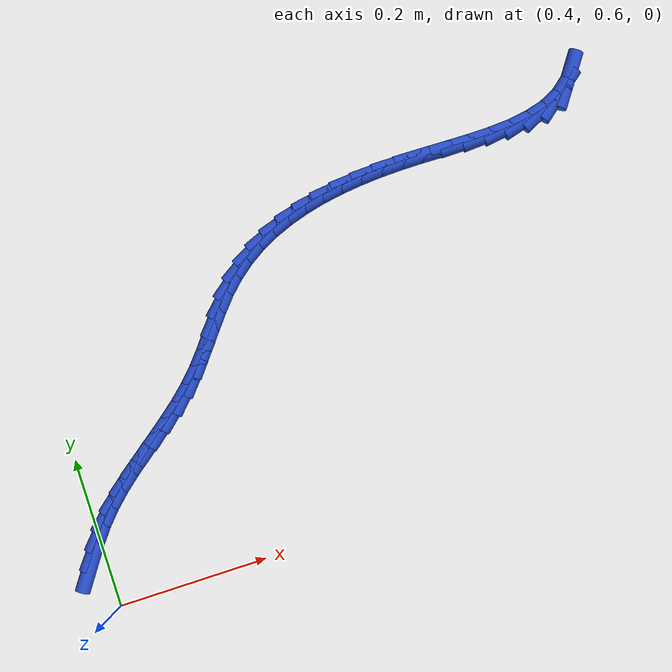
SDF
<sdf version="1.6">
 <world name="default">
  <model name="ground_plane">
   <static>1</static>
   <link name="link">
    <collision name="collision">
     <geometry><plane><normal>0 0 1</normal><size>100 100</size></plane></geometry>
     <surface><friction><ode><mu>100</mu><mu2>50</mu2></ode></friction></surface>
    </collision>
    <visual name="visual">
     <cast_shadows>0</cast_shadows>
     <geometry><plane><normal>0 0 1</normal><size>100 100</size></plane></geometry>
     <material>
      <script><uri>file://media/materials/scripts/gazebo.material</uri><name>Gazebo/WhiteGlow</name></script>
     </material>
    </visual>
   </link>
  </model>
  <model name="line">
   <link name="link_30">
    <pose>0.38174015974260983 0.6664988276915829 0.01 0 1.57 0.9751084401328263</pose>
    <collision name="collision">
     <geometry><cylinder><radius>0.01</radius><length>0.08</length></cylinder></geometry>
    </collision>
    <visual name="visual">
     <material>
      <script><name>Gazebo/Blue</name><uri>file://media/materials/scripts/gazebo.material</uri></script>
     </material>
     <geometry><cylinder><radius>0.01</radius><length>0.08</length></cylinder></geometry>
    </visual>
   </link>
   <link name="link_31">
    <pose>0.39638793772403197 0.6881087971220984 0.01 0 1.57 0.9142567050235809</pose>
    <collision name="collision">
     <geometry><cylinder><radius>0.01</radius><length>0.08</length></cylinder></geometry>
    </collision>
    <visual name="visual">
     <material>
      <script><name>Gazebo/Blue</name><uri>file://media/materials/scripts/gazebo.material</uri></script>
     </material>
     <geometry><cylinder><radius>0.01</radius><length>0.08</length></cylinder></geometry>
    </visual>
   </link>
   <link name="link_32">
    <pose>0.412223475573457 0.7086590835398332 0.01 0 1.57 0.8391795045580464</pose>
    <collision name="collision">
     <geometry><cylinder><radius>0.01</radius><length>0.08</length></cylinder></geometry>
    </collision>
    <visual name="visual">
     <material>
      <script><name>Gazebo/Blue</name><uri>file://media/materials/scripts/gazebo.material</uri></script>
     </material>
     <geometry><cylinder><radius>0.01</radius><length>0.08</length></cylinder></geometry>
    </visual>
   </link>
   <link name="link_33">
    <pose>0.42952521194756565 0.7279296246226837 0.01 0 1.57 0.7596950481839011</pose>
    <collision name="collision">
     <geometry><cylinder><radius>0.01</radius><length>0.08</length></cylinder></geometry>
    </collision>
    <visual name="visual">
     <material>
      <script><name>Gazebo/Blue</name><uri>file://media/materials/scripts/gazebo.material</uri></script>
     </material>
     <geometry><cylinder><radius>0.01</radius><length>0.08</length></cylinder></geometry>
    </visual>
   </link>
   <link name="link_34">
    <pose>0.44839693710184775 0.7458553327712897 0.01 0 1.57 0.6999803119897922</pose>
    <collision name="collision">
     <geometry><cylinder><radius>0.01</radius><length>0.08</length></cylinder></geometry>
    </collision>
    <visual name="visual">
     <material>
      <script><name>Gazebo/Blue</name><uri>file://media/materials/scripts/gazebo.material</uri></script>
     </material>
     <geometry><cylinder><radius>0.01</radius><length>0.08</length></cylinder></geometry>
    </visual>
   </link>
   <link name="link_35">
    <pose>0.46848640694426885 0.7627757836760003 0.01 0 1.57 0.6633917569379105</pose>
    <collision name="collision">
     <geometry><cylinder><radius>0.01</radius><length>0.08</length></cylinder></geometry>
    </collision>
    <visual name="visual">
     <material>
      <script><name>Gazebo/Blue</name><uri>file://media/materials/scripts/gazebo.material</uri></script>
     </material>
     <geometry><cylinder><radius>0.01</radius><length>0.08</length></cylinder></geometry>
    </visual>
   </link>
   <link name="link_36">
    <pose>0.4893678729325579 0.7790957773963426 0.01 0 1.57 0.6491562956086534</pose>
    <collision name="collision">
     <geometry><cylinder><radius>0.01</radius><length>0.08</length></cylinder></geometry>
    </collision>
    <visual name="visual">
     <material>
      <script><name>Gazebo/Blue</name><uri>file://media/materials/scripts/gazebo.material</uri></script>
     </material>
     <geometry><cylinder><radius>0.01</radius><length>0.08</length></cylinder></geometry>
    </visual>
   </link>
   <link name="link_37">
    <pose>0.5106155865244453 0.7952201139918446 0.01 0 1.57 0.6567282749231638</pose>
    <collision name="collision">
     <geometry><cylinder><radius>0.01</radius><length>0.08</length></cylinder></geometry>
    </collision>
    <visual name="visual">
     <material>
      <script><name>Gazebo/Blue</name><uri>file://media/materials/scripts/gazebo.material</uri></script>
     </material>
     <geometry><cylinder><radius>0.01</radius><length>0.08</length></cylinder></geometry>
    </visual>
   </link>
   <link name="link_38">
    <pose>0.5318037991776596 0.8115535935220327 0.01 0 1.57 0.6859792857089673</pose>
    <collision name="collision">
     <geometry><cylinder><radius>0.01</radius><length>0.08</length></cylinder></geometry>
    </collision>
    <visual name="visual">
     <material>
      <script><name>Gazebo/Blue</name><uri>file://media/materials/scripts/gazebo.material</uri></script>
     </material>
     <geometry><cylinder><radius>0.01</radius><length>0.08</length></cylinder></geometry>
    </visual>
   </link>
   <link name="link_39">
    <pose>0.5525067623499312 0.8285010160464351 0.01 0 1.57 0.7370806622663758</pose>
    <collision name="collision">
     <geometry><cylinder><radius>0.01</radius><length>0.08</length></cylinder></geometry>
    </collision>
    <visual name="visual">
     <material>
      <script><name>Gazebo/Blue</name><uri>file://media/materials/scripts/gazebo.material</uri></script>
     </material>
     <geometry><cylinder><radius>0.01</radius><length>0.08</length></cylinder></geometry>
    </visual>
   </link>
   <link name="link_40">
    <pose>0.5722987274989889 0.8464671816245781 0.01 0 1.57 0.8092692131151384</pose>
    <collision name="collision">
     <geometry><cylinder><radius>0.01</radius><length>0.08</length></cylinder></geometry>
    </collision>
    <visual name="visual">
     <material>
      <script><name>Gazebo/Blue</name><uri>file://media/materials/scripts/gazebo.material</uri></script>
     </material>
     <geometry><cylinder><radius>0.01</radius><length>0.08</length></cylinder></geometry>
    </visual>
   </link>
   <link name="link_41">
    <pose>0.5907684205470087 0.8658403962260779 0.01 0 1.57 0.8761044099704459</pose>
    <collision name="collision">
     <geometry><cylinder><radius>0.01</radius><length>0.08</length></cylinder></geometry>
    </collision>
    <visual name="visual">
     <material>
      <script><name>Gazebo/Blue</name><uri>file://media/materials/scripts/gazebo.material</uri></script>
     </material>
     <geometry><cylinder><radius>0.01</radius><length>0.08</length></cylinder></geometry>
    </visual>
   </link>
   <link name="link_42">
    <pose>0.6079675867479735 0.8864813412912924 0.01 0 1.57 0.9072512508923722</pose>
    <collision name="collision">
     <geometry><cylinder><radius>0.01</radius><length>0.08</length></cylinder></geometry>
    </collision>
    <visual name="visual">
     <material>
      <script><name>Gazebo/Blue</name><uri>file://media/materials/scripts/gazebo.material</uri></script>
     </material>
     <geometry><cylinder><radius>0.01</radius><length>0.08</length></cylinder></geometry>
    </visual>
   </link>
   <link name="link_43">
    <pose>0.6244974074195689 0.9076245992522803 0.01 0 1.57 0.9013861456798573</pose>
    <collision name="collision">
     <geometry><cylinder><radius>0.01</radius><length>0.08</length></cylinder></geometry>
    </collision>
    <visual name="visual">
     <material>
      <script><name>Gazebo/Blue</name><uri>file://media/materials/scripts/gazebo.material</uri></script>
     </material>
     <geometry><cylinder><radius>0.01</radius><length>0.08</length></cylinder></geometry>
    </visual>
   </link>
   <link name="link_44">
    <pose>0.6409909805003186 0.9284683825865687 0.01 0 1.57 0.8572775292607597</pose>
    <collision name="collision">
     <geometry><cylinder><radius>0.01</radius><length>0.08</length></cylinder></geometry>
    </collision>
    <visual name="visual">
     <material>
      <script><name>Gazebo/Blue</name><uri>file://media/materials/scripts/gazebo.material</uri></script>
     </material>
     <geometry><cylinder><radius>0.01</radius><length>0.08</length></cylinder></geometry>
    </visual>
   </link>
   <link name="link_45">
    <pose>0.6580814039287448 0.9482109037716852 0.01 0 1.57 0.7728882888655754</pose>
    <collision name="collision">
     <geometry><cylinder><radius>0.01</radius><length>0.08</length></cylinder></geometry>
    </collision>
    <visual name="visual">
     <material>
      <script><name>Gazebo/Blue</name><uri>file://media/materials/scripts/gazebo.material</uri></script>
     </material>
     <geometry><cylinder><radius>0.01</radius><length>0.08</length></cylinder></geometry>
    </visual>
   </link>
   <link name="link_46">
    <pose>0.6763894388033018 0.9660665124020236 0.01 0 1.57 0.6671672778387407</pose>
    <collision name="collision">
     <geometry><cylinder><radius>0.01</radius><length>0.08</length></cylinder></geometry>
    </collision>
    <visual name="visual">
     <material>
      <script><name>Gazebo/Blue</name><uri>file://media/materials/scripts/gazebo.material</uri></script>
     </material>
     <geometry><cylinder><radius>0.01</radius><length>0.08</length></cylinder></geometry>
    </visual>
   </link>
   <link name="link_47">
    <pose>0.6962088199578458 0.9816773224768388 0.01 0 1.57 0.5645032360332911</pose>
    <collision name="collision">
     <geometry><cylinder><radius>0.01</radius><length>0.08</length></cylinder></geometry>
    </collision>
    <visual name="visual">
     <material>
      <script><name>Gazebo/Blue</name><uri>file://media/materials/scripts/gazebo.material</uri></script>
     </material>
     <geometry><cylinder><radius>0.01</radius><length>0.08</length></cylinder></geometry>
    </visual>
   </link>
   <link name="link_48">
    <pose>0.717480235989033 0.9951472476423672 0.01 0 1.57 0.4683213424950577</pose>
    <collision name="collision">
     <geometry><cylinder><radius>0.01</radius><length>0.08</length></cylinder></geometry>
    </collision>
    <visual name="visual">
     <material>
      <script><name>Gazebo/Blue</name><uri>file://media/materials/scripts/gazebo.material</uri></script>
     </material>
     <geometry><cylinder><radius>0.01</radius><length>0.08</length></cylinder></geometry>
    </visual>
   </link>
   <link name="link_49">
    <pose>0.7401268250953751 1.0066031582196746 0.01 0 1.57 0.38017533481034327</pose>
    <collision name="collision">
     <geometry><cylinder><radius>0.01</radius><length>0.08</length></cylinder></geometry>
    </collision>
    <visual name="visual">
     <material>
      <script><name>Gazebo/Blue</name><uri>file://media/materials/scripts/gazebo.material</uri></script>
     </material>
     <geometry><cylinder><radius>0.01</radius><length>0.08</length></cylinder></geometry>
    </visual>
   </link>
   <link name="link_50">
    <pose>0.7640717254753842 1.0161719245298282 0.01 0 1.57 0.3008566547140714</pose>
    <collision name="collision">
     <geometry><cylinder><radius>0.01</radius><length>0.08</length></cylinder></geometry>
    </collision>
    <visual name="visual">
     <material>
      <script><name>Gazebo/Blue</name><uri>file://media/materials/scripts/gazebo.material</uri></script>
     </material>
     <geometry><cylinder><radius>0.01</radius><length>0.08</length></cylinder></geometry>
    </visual>
   </link>
   <link name="link_51">
    <pose>0.7892380753275718 1.0239804168938933 0.01 0 1.57 0.23052446113596645</pose>
    <collision name="collision">
     <geometry><cylinder><radius>0.01</radius><length>0.08</length></cylinder></geometry>
    </collision>
    <visual name="visual">
     <material>
      <script><name>Gazebo/Blue</name><uri>file://media/materials/scripts/gazebo.material</uri></script>
     </material>
     <geometry><cylinder><radius>0.01</radius><length>0.08</length></cylinder></geometry>
    </visual>
   </link>
   <link name="link_52">
    <pose>0.8155490128504504 1.030155505632937 0.01 0 1.57 0.16889358243645897</pose>
    <collision name="collision">
     <geometry><cylinder><radius>0.01</radius><length>0.08</length></cylinder></geometry>
    </collision>
    <visual name="visual">
     <material>
      <script><name>Gazebo/Blue</name><uri>file://media/materials/scripts/gazebo.material</uri></script>
     </material>
     <geometry><cylinder><radius>0.01</radius><length>0.08</length></cylinder></geometry>
    </visual>
   </link>
   <link name="link_53">
    <pose>0.8429276762425315 1.0348240610680253 0.01 0 1.57 0.11541524773498889</pose>
    <collision name="collision">
     <geometry><cylinder><radius>0.01</radius><length>0.08</length></cylinder></geometry>
    </collision>
    <visual name="visual">
     <material>
      <script><name>Gazebo/Blue</name><uri>file://media/materials/scripts/gazebo.material</uri></script>
     </material>
     <geometry><cylinder><radius>0.01</radius><length>0.08</length></cylinder></geometry>
    </visual>
   </link>
   <link name="link_54">
    <pose>0.8712972037023271 1.0381129535202243 0.01 0 1.57 0.06941882080983323</pose>
    <collision name="collision">
     <geometry><cylinder><radius>0.01</radius><length>0.08</length></cylinder></geometry>
    </collision>
    <visual name="visual">
     <material>
      <script><name>Gazebo/Blue</name><uri>file://media/materials/scripts/gazebo.material</uri></script>
     </material>
     <geometry><cylinder><radius>0.01</radius><length>0.08</length></cylinder></geometry>
    </visual>
   </link>
   <link name="link_55">
    <pose>0.9005807334283493 1.0401490533106004 0.01 0 1.57 0.030208510134806306</pose>
    <collision name="collision">
     <geometry><cylinder><radius>0.01</radius><length>0.08</length></cylinder></geometry>
    </collision>
    <visual name="visual">
     <material>
      <script><name>Gazebo/Blue</name><uri>file://media/materials/scripts/gazebo.material</uri></script>
     </material>
     <geometry><cylinder><radius>0.01</radius><length>0.08</length></cylinder></geometry>
    </visual>
   </link>
   <link name="link_56">
    <pose>0.9307014036191092 1.0410592307602198 0.01 0 1.57 -0.0025927699023464827</pose>
    <collision name="collision">
     <geometry><cylinder><radius>0.01</radius><length>0.08</length></cylinder></geometry>
    </collision>
    <visual name="visual">
     <material>
      <script><name>Gazebo/Blue</name><uri>file://media/materials/scripts/gazebo.material</uri></script>
     </material>
     <geometry><cylinder><radius>0.01</radius><length>0.08</length></cylinder></geometry>
    </visual>
   </link>
   <link name="link_57">
    <pose>0.9615745627484784 1.0409791835830675 0.01 0 1.57 -0.021577090216991536</pose>
    <collision name="collision">
     <geometry><cylinder><radius>0.01</radius><length>0.08</length></cylinder></geometry>
    </collision>
    <visual name="visual">
     <material>
      <script><name>Gazebo/Blue</name><uri>file://media/materials/scripts/gazebo.material</uri></script>
     </material>
     <geometry><cylinder><radius>0.01</radius><length>0.08</length></cylinder></geometry>
    </visual>
   </link>
   <link name="link_58">
    <pose>0.9928871508688212 1.040303444172828 0.01 0 1.57 -0.01868479128936091</pose>
    <collision name="collision">
     <geometry><cylinder><radius>0.01</radius><length>0.08</length></cylinder></geometry>
    </collision>
    <visual name="visual">
     <material>
      <script><name>Gazebo/Blue</name><uri>file://media/materials/scripts/gazebo.material</uri></script>
     </material>
     <geometry><cylinder><radius>0.01</radius><length>0.08</length></cylinder></geometry>
    </visual>
   </link>
   <link name="link_59">
    <pose>1.024066444886732 1.039720797765194 0.01 0 1.57 0.007064394103406492</pose>
    <collision name="collision">
     <geometry><cylinder><radius>0.01</radius><length>0.08</length></cylinder></geometry>
    </collision>
    <visual name="visual">
     <material>
      <script><name>Gazebo/Blue</name><uri>file://media/materials/scripts/gazebo.material</uri></script>
     </material>
     <geometry><cylinder><radius>0.01</radius><length>0.08</length></cylinder></geometry>
    </visual>
   </link>
   <link name="link_60">
    <pose>1.0545256487911034 1.0399359771652195 0.01 0 1.57 0.05885481272148601</pose>
    <collision name="collision">
     <geometry><cylinder><radius>0.01</radius><length>0.08</length></cylinder></geometry>
    </collision>
    <visual name="visual">
     <material>
      <script><name>Gazebo/Blue</name><uri>file://media/materials/scripts/gazebo.material</uri></script>
     </material>
     <geometry><cylinder><radius>0.01</radius><length>0.08</length></cylinder></geometry>
    </visual>
   </link>
   <link name="link_61">
    <pose>1.08367796657083 1.0416537151779588 0.01 0 1.57 0.14300918004466553</pose>
    <collision name="collision">
     <geometry><cylinder><radius>0.01</radius><length>0.08</length></cylinder></geometry>
    </collision>
    <visual name="visual">
     <material>
      <script><name>Gazebo/Blue</name><uri>file://media/materials/scripts/gazebo.material</uri></script>
     </material>
     <geometry><cylinder><radius>0.01</radius><length>0.08</length></cylinder></geometry>
    </visual>
   </link>
   <link name="link_62">
    <pose>1.1109366022148055 1.045578744608467 0.01 0 1.57 0.26923124337227994</pose>
    <collision name="collision">
     <geometry><cylinder><radius>0.01</radius><length>0.08</length></cylinder></geometry>
    </collision>
    <visual name="visual">
     <material>
      <script><name>Gazebo/Blue</name><uri>file://media/materials/scripts/gazebo.material</uri></script>
     </material>
     <geometry><cylinder><radius>0.01</radius><length>0.08</length></cylinder></geometry>
    </visual>
   </link>
   <link name="link_63">
    <pose>1.1357147597119244 1.0524157982617992 0.01 0 1.57 0.44873913834401596</pose>
    <collision name="collision">
     <geometry><cylinder><radius>0.01</radius><length>0.08</length></cylinder></geometry>
    </collision>
    <visual name="visual">
     <material>
      <script><name>Gazebo/Blue</name><uri>file://media/materials/scripts/gazebo.material</uri></script>
     </material>
     <geometry><cylinder><radius>0.01</radius><length>0.08</length></cylinder></geometry>
    </visual>
   </link>
   <link name="link_64">
    <pose>1.1574256430510796 1.0628696089430094 0.01 0 1.57 0.6857807382556667</pose>
    <collision name="collision">
     <geometry><cylinder><radius>0.01</radius><length>0.08</length></cylinder></geometry>
    </collision>
    <visual name="visual">
     <material>
      <script><name>Gazebo/Blue</name><uri>file://media/materials/scripts/gazebo.material</uri></script>
     </material>
     <geometry><cylinder><radius>0.01</radius><length>0.08</length></cylinder></geometry>
    </visual>
   </link>
   <link name="link_65">
    <pose>1.175482456221166 1.0776449094571525 0.01 0 1.57 0.9612947553731795</pose>
    <collision name="collision">
     <geometry><cylinder><radius>0.01</radius><length>0.08</length></cylinder></geometry>
    </collision>
    <visual name="visual">
     <material>
      <script><name>Gazebo/Blue</name><uri>file://media/materials/scripts/gazebo.material</uri></script>
     </material>
     <geometry><cylinder><radius>0.01</radius><length>0.08</length></cylinder></geometry>
    </visual>
   </link>
  </model>
 </world>
</sdf>
